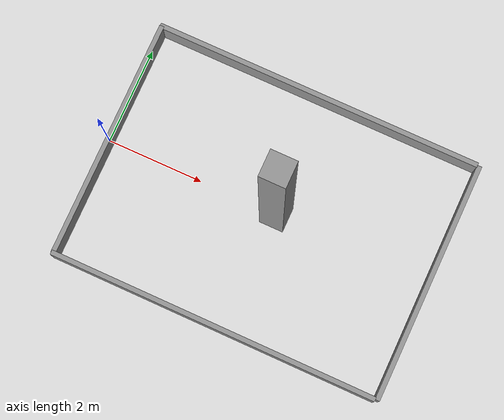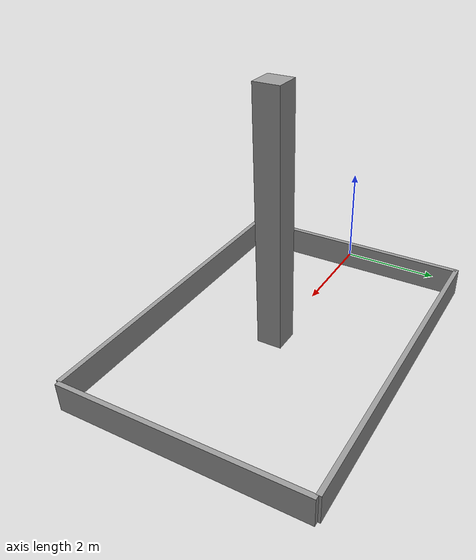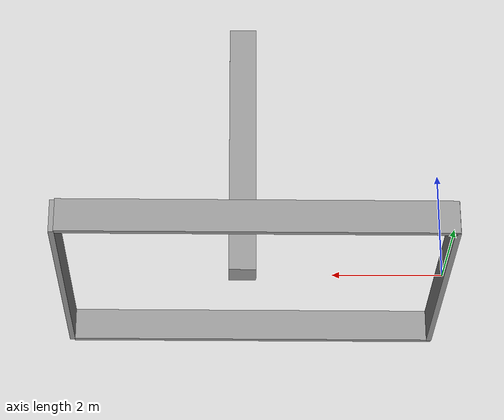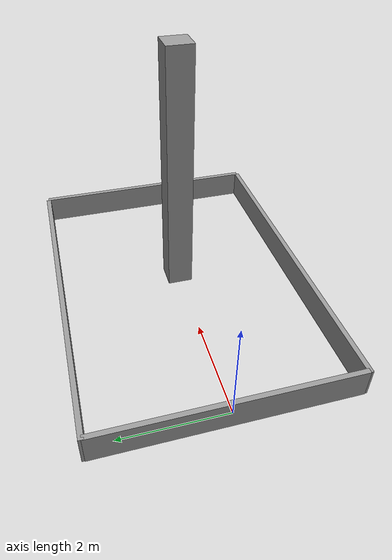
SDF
<?xml version="1.0" ?>
<sdf version='1.7'>
  <model name='arena_frame'>
    <pose>0 0 0 0 -0 0</pose>
      <link name='left_wall'>
        <collision name='left_wall_Collision'>
          <geometry>
            <box>
              <size>0.1 5 0.6</size>
            </box>
          </geometry>
          <pose>0 0 0 0 -0 0</pose>
          <max_contacts>10</max_contacts>
          <surface>
            <contact>
              <ode/>
            </contact>
            <bounce/>
            <friction>
              <torsional>
                <ode/>
              </torsional>
              <ode/>
            </friction>
          </surface>
        </collision>
        <visual name='left_wall_Visual'>
          <pose>0 0 0 0 -0 0</pose>
          <geometry>
            <box>
              <size>0.1 5 0.6</size>
            </box>
          </geometry>
          <material>
            <script>
              <uri>file://media/materials/scripts/gazebo.material</uri>
              <name>Gazebo/Grey</name>
            </script>
            <ambient>1 1 1 1</ambient>
          </material>
          <meta>
            <layer>0</layer>
          </meta>
        </visual>
        <pose>0 0 0 0 -0 0</pose>
        <self_collide>0</self_collide>
        <enable_wind>0</enable_wind>
        <kinematic>0</kinematic>
      </link>
      <link name='right_wall'>
        <collision name='right_wall_Collision'>
          <geometry>
            <box>
              <size>0.1 5 0.6</size>
            </box>
          </geometry>
          <max_contacts>10</max_contacts>
          <surface>
            <contact>
              <ode/>
            </contact>
            <bounce/>
            <friction>
              <torsional>
                <ode/>
              </torsional>
              <ode/>
            </friction>
          </surface>
        </collision>
        <visual name='right_wall_Visual'>
          <geometry>
            <box>
              <size>0.1 5 0.6</size>
            </box>
          </geometry>
          <material>
            <script>
              <uri>file://media/materials/scripts/gazebo.material</uri>
              <name>Gazebo/Grey</name>
            </script>
            <ambient>1 1 1 1</ambient>
          </material>
          <meta>
            <layer>0</layer>
          </meta>
        </visual>
        <pose>6.88 0 0 0 -0 0</pose>
        <self_collide>0</self_collide>
        <enable_wind>0</enable_wind>
        <kinematic>0</kinematic>
      </link>
      <link name='top_wall'>
        <collision name='top_wall_Collision'>
          <geometry>
            <box>
              <size>6.88 0.1 0.6</size>
            </box>
          </geometry>
          <max_contacts>10</max_contacts>
          <surface>
            <contact>
              <ode/>
            </contact>
            <bounce/>
            <friction>
              <torsional>
                <ode/>
              </torsional>
              <ode/>
            </friction>
          </surface>
        </collision>
        <visual name='top_wall_Visual'>
          <geometry>
            <box>
              <size>6.88 0.1 0.6</size>
            </box>
          </geometry>
          <material>
            <script>
              <uri>file://media/materials/scripts/gazebo.material</uri>
              <name>Gazebo/Grey</name>
            </script>
            <ambient>1 1 1 1</ambient>
          </material>
          <meta>
            <layer>0</layer>
          </meta>
        </visual>
        <pose>3.4 2.5 0 0 -0 0</pose>
        <self_collide>0</self_collide>
        <enable_wind>0</enable_wind>
        <kinematic>0</kinematic>
      </link>
      <link name='bottom_wall'>
        <collision name='bottom_wall_Collision'>
          <geometry>
            <box>
              <size>6.88 0.1 0.6</size>
            </box>
          </geometry>
          <max_contacts>10</max_contacts>
          <surface>
            <contact>
              <ode/>
            </contact>
            <bounce/>
            <friction>
              <torsional>
                <ode/>
              </torsional>
              <ode/>
            </friction>
          </surface>
        </collision>
        <visual name='bottom_wall_Visual'>
          <geometry>
            <box>
              <size>6.88 0.1 0.6</size>
            </box>
          </geometry>
          <material>
            <script>
              <uri>file://media/materials/scripts/gazebo.material</uri>
              <name>Gazebo/Grey</name>
            </script>
            <ambient>1 1 1 1</ambient>
          </material>
          <meta>
            <layer>0</layer>
          </meta>
        </visual>
        <pose>3.4 -2.5 0 0 -0 0</pose>
        <self_collide>0</self_collide>
        <enable_wind>0</enable_wind>
        <kinematic>0</kinematic>
      </link>
      <link name='pole'>
        <collision name='pole_Collision'>
          <geometry>
            <box>
              <size>0.5 0.5 5</size>
            </box>
          </geometry>
          <pose>3.63 0 2.5 0 -0 0</pose>
          <max_contacts>10</max_contacts>
          <surface>
            <contact>
              <ode/>
            </contact>
            <bounce/>
            <friction>
              <torsional>
                <ode/>
              </torsional>
              <ode/>
            </friction>
          </surface>
        </collision>
        <visual name='pole_Visual'>
          <pose>3.63 0 2.5 0 -0 0</pose>
          <geometry>
            <box>
              <size>0.5 0.5 5</size>
            </box>
          </geometry>
          <material>
            <script>
              <uri>file://media/materials/scripts/gazebo.material</uri>
              <name>Gazebo/Grey</name>
            </script>
            <ambient>1 1 1 1</ambient>
          </material>
          <meta>
            <layer>0</layer>
          </meta>
        </visual>
        <pose>0 0 0 0 -0 0</pose>
        <self_collide>0</self_collide>
        <enable_wind>0</enable_wind>
        <kinematic>0</kinematic>
      </link>
    <static>1</static>
  </model>
</sdf>
